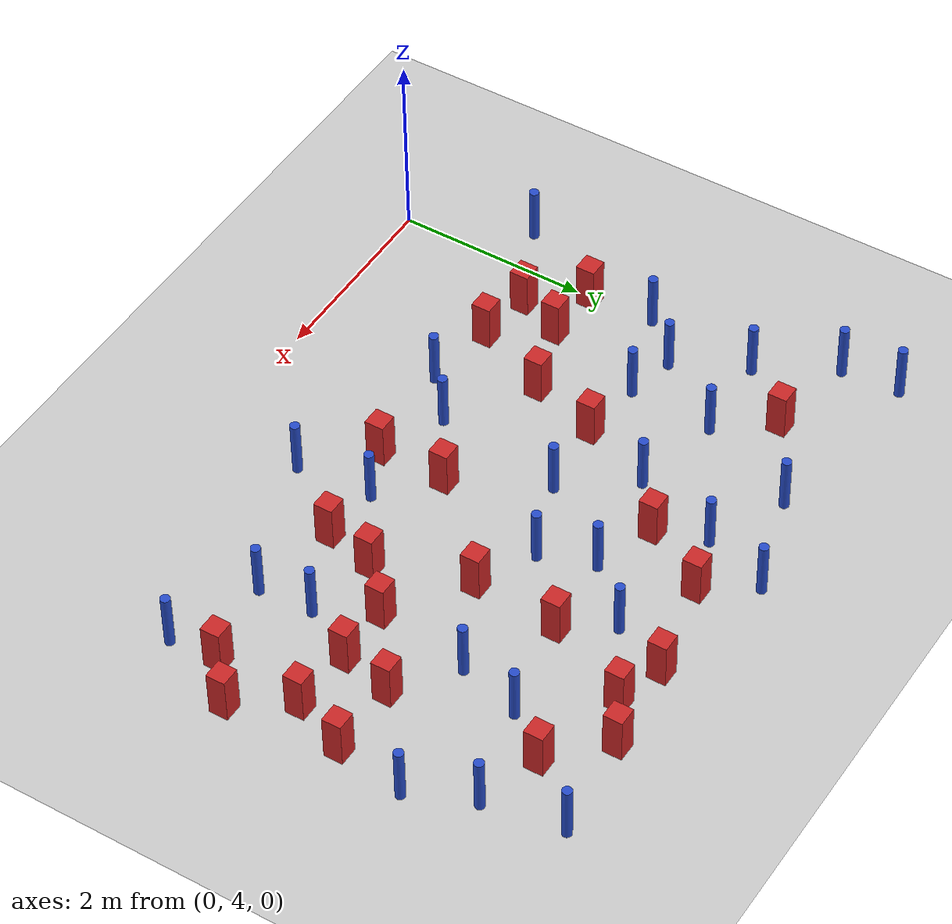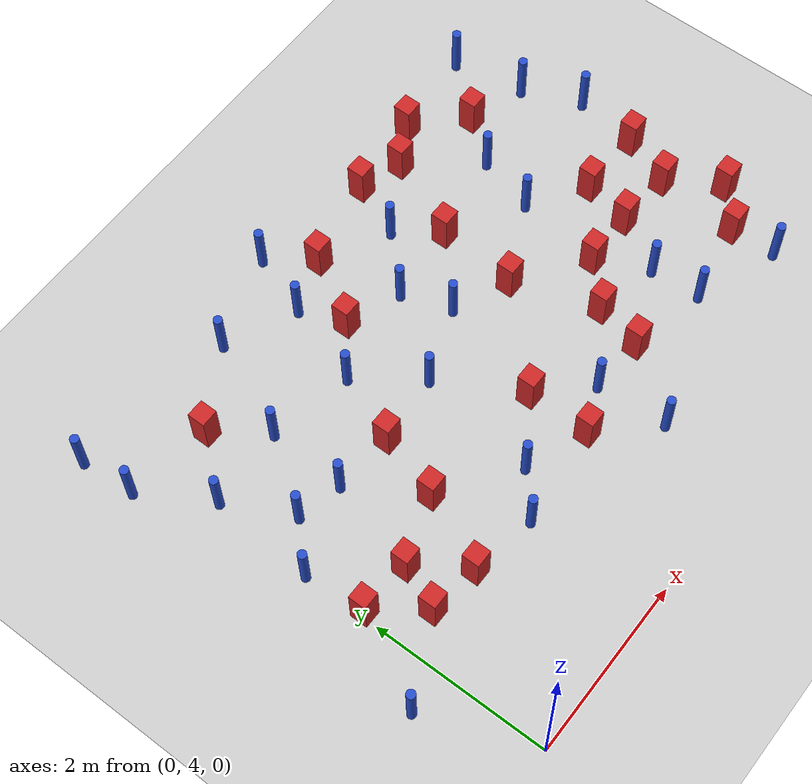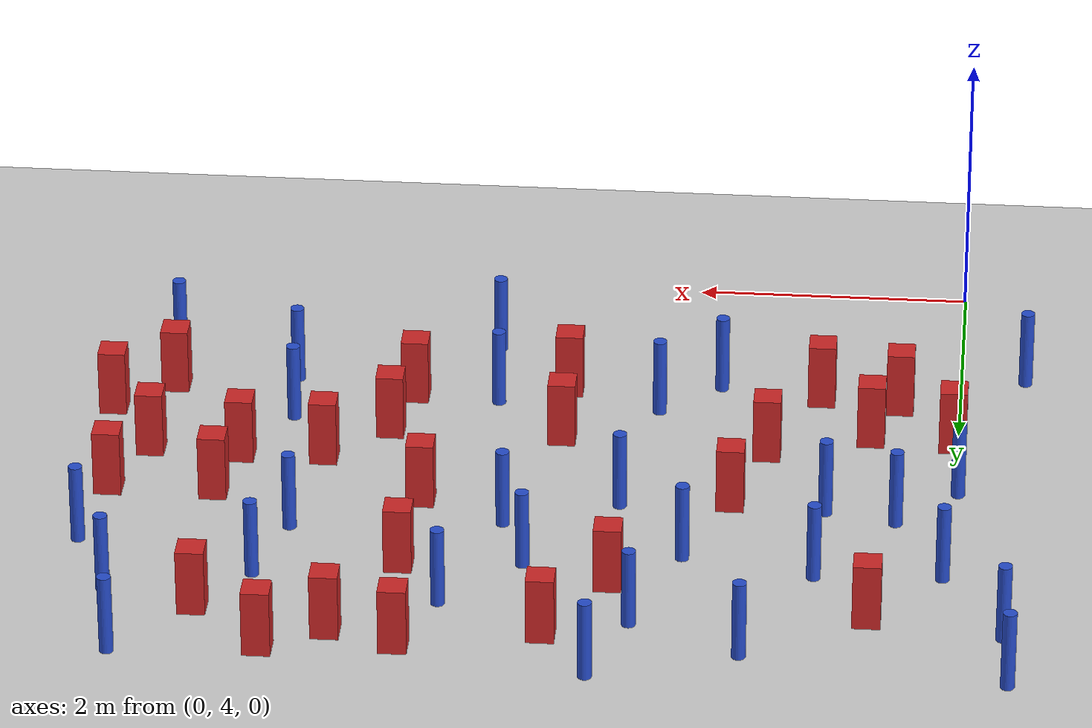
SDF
<sdf version="1.6">
 <world name="default">
  <model name="ground_plane">
   <static>1</static>
   <link name="link">
    <collision name="collision">
     <geometry><plane><normal>0 0 1</normal><size>100 100</size></plane></geometry>
     <surface><friction><ode><mu>100</mu><mu2>50</mu2></ode></friction></surface>
    </collision>
    <visual name="visual">
     <cast_shadows>0</cast_shadows>
     <geometry><plane><normal>0 0 1</normal><size>100 100</size></plane></geometry>
     <material>
      <ambient>1.0 1.0 1.0 1.0</ambient>
      <diffuse>0.8 0.8 0.8 1.0</diffuse>
      <specular>0.01 0.01 0.01 1.000000</specular>
     </material>
    </visual>
   </link>
  </model>
  <model name="square_post_obstacle4">
   <static>true</static>
   <pose>5.32736103895 7.24112209833 -6.11067671241e-07 -5.50515727128e-06 -8.79689657224e-07 2.37013304536e-05</pose>
   <link name="link">
    <pose>0 0 0.25 0 -0 0</pose>
    <inertial>
     <mass>100</mass>
     <inertia>
      <ixx>0.166667</ixx>
      <ixy>0</ixy>
      <ixz>0</ixz>
      <iyy>0.166667</iyy>
      <iyz>0</iyz>
      <izz>0.166667</izz>
     </inertia>
    </inertial>
    <collision name="collision"><geometry><box><size>.2 .2 .5</size></box></geometry></collision>
    <visual name="visual">
     <geometry><box><size>.2 .2 .5</size></box></geometry>
     <material>
      <script><name>Gazebo/Red</name><uri>file://media/materials/scripts/gazebo.material</uri></script>
     </material>
    </visual>
   </link>
  </model>
  <model name="square_post_obstacle15">
   <static>true</static>
   <pose>4.7607589038 9.30322569417 -6.11067671241e-07 -5.50515727128e-06 -8.79689657224e-07 2.37013304536e-05</pose>
   <link name="link">
    <pose>0 0 0.25 0 -0 0</pose>
    <inertial>
     <mass>100</mass>
     <inertia>
      <ixx>0.166667</ixx>
      <ixy>0</ixy>
      <ixz>0</ixz>
      <iyy>0.166667</iyy>
      <iyz>0</iyz>
      <izz>0.166667</izz>
     </inertia>
    </inertial>
    <collision name="collision"><geometry><box><size>.2 .2 .5</size></box></geometry></collision>
    <visual name="visual">
     <geometry><box><size>.2 .2 .5</size></box></geometry>
     <material>
      <script><name>Gazebo/Red</name><uri>file://media/materials/scripts/gazebo.material</uri></script>
     </material>
    </visual>
   </link>
  </model>
  <model name="pole_obstacle15">
   <static>true</static>
   <pose>2.2225770881 8.78452757937 -9.4761961606e-06 5.49618799729e-07 2.36310414e-07 -1.55090534824e-07</pose>
   <link name="link">
    <pose>0 0 0.3 0 -0 0</pose>
    <inertial>
     <mass>1</mass>
     <inertia><ixx>0.145833</ixx><ixy>0</ixy><ixz>0</ixz><iyy>0.145833</iyy><iyz>0</iyz><izz>0.125</izz></inertia>
    </inertial>
    <collision name="collision">
     <geometry><cylinder><radius>0.05</radius><length>.6</length></cylinder></geometry>
    </collision>
    <visual name="visual">
     <geometry><cylinder><radius>0.05</radius><length>.6</length></cylinder></geometry>
     <material>
      <script><name>Gazebo/Blue</name><uri>file://media/materials/scripts/gazebo.material</uri></script>
     </material>
    </visual>
   </link>
  </model>
  <model name="pole_obstacle16">
   <static>true</static>
   <pose>1.43384088985 9.14142297972 -9.47619616065e-06 5.49618799737e-07 2.36310414046e-07 -1.55090534809e-07</pose>
   <link name="link">
    <pose>0 0 0.3 0 -0 0</pose>
    <inertial>
     <mass>1</mass>
     <inertia><ixx>0.145833</ixx><ixy>0</ixy><ixz>0</ixz><iyy>0.145833</iyy><iyz>0</iyz><izz>0.125</izz></inertia>
    </inertial>
    <collision name="collision">
     <geometry><cylinder><radius>0.05</radius><length>.6</length></cylinder></geometry>
    </collision>
    <visual name="visual">
     <geometry><cylinder><radius>0.05</radius><length>.6</length></cylinder></geometry>
     <material>
      <script><name>Gazebo/Blue</name><uri>file://media/materials/scripts/gazebo.material</uri></script>
     </material>
    </visual>
   </link>
  </model>
  <model name="pole_obstacle17">
   <static>true</static>
   <pose>3.39285992217 5.78231030894 -9.47619616065e-06 5.49618799738e-07 2.3631041406e-07 -1.55090534801e-07</pose>
   <link name="link">
    <pose>0 0 0.3 0 -0 0</pose>
    <inertial>
     <mass>1</mass>
     <inertia><ixx>0.145833</ixx><ixy>0</ixy><ixz>0</ixz><iyy>0.145833</iyy><iyz>0</iyz><izz>0.125</izz></inertia>
    </inertial>
    <collision name="collision">
     <geometry><cylinder><radius>0.05</radius><length>.6</length></cylinder></geometry>
    </collision>
    <visual name="visual">
     <geometry><cylinder><radius>0.05</radius><length>.6</length></cylinder></geometry>
     <material>
      <script><name>Gazebo/Blue</name><uri>file://media/materials/scripts/gazebo.material</uri></script>
     </material>
    </visual>
   </link>
  </model>
  <model name="pole_obstacle22">
   <static>true</static>
   <pose>-0.426677283189 9.38214437274 -9.47619616065e-06 5.49618799737e-07 2.36310414031e-07 -1.55090534818e-07</pose>
   <link name="link">
    <pose>0 0 0.3 0 -0 0</pose>
    <inertial>
     <mass>1</mass>
     <inertia><ixx>0.145833</ixx><ixy>0</ixy><ixz>0</ixz><iyy>0.145833</iyy><iyz>0</iyz><izz>0.125</izz></inertia>
    </inertial>
    <collision name="collision">
     <geometry><cylinder><radius>0.05</radius><length>.6</length></cylinder></geometry>
    </collision>
    <visual name="visual">
     <geometry><cylinder><radius>0.05</radius><length>.6</length></cylinder></geometry>
     <material>
      <script><name>Gazebo/Blue</name><uri>file://media/materials/scripts/gazebo.material</uri></script>
     </material>
    </visual>
   </link>
  </model>
  <model name="pole_obstacle27">
   <static>true</static>
   <pose>3.44863694366 4.98612584158 -9.47619616065e-06 5.49618799738e-07 2.3631041406e-07 -1.55090534801e-07</pose>
   <link name="link">
    <pose>0 0 0.3 0 -0 0</pose>
    <inertial>
     <mass>1</mass>
     <inertia><ixx>0.145833</ixx><ixy>0</ixy><ixz>0</ixz><iyy>0.145833</iyy><iyz>0</iyz><izz>0.125</izz></inertia>
    </inertial>
    <collision name="collision">
     <geometry><cylinder><radius>0.05</radius><length>.6</length></cylinder></geometry>
    </collision>
    <visual name="visual">
     <geometry><cylinder><radius>0.05</radius><length>.6</length></cylinder></geometry>
     <material>
      <script><name>Gazebo/Blue</name><uri>file://media/materials/scripts/gazebo.material</uri></script>
     </material>
    </visual>
   </link>
  </model>
  <model name="pole_obstacle29">
   <static>true</static>
   <pose>3.5739130024 8.6114936394 -9.4761961606e-06 5.49618799729e-07 2.36310414e-07 -1.55090534824e-07</pose>
   <link name="link">
    <pose>0 0 0.3 0 -0 0</pose>
    <inertial>
     <mass>1</mass>
     <inertia><ixx>0.145833</ixx><ixy>0</ixy><ixz>0</ixz><iyy>0.145833</iyy><iyz>0</iyz><izz>0.125</izz></inertia>
    </inertial>
    <collision name="collision">
     <geometry><cylinder><radius>0.05</radius><length>.6</length></cylinder></geometry>
    </collision>
    <visual name="visual">
     <geometry><cylinder><radius>0.05</radius><length>.6</length></cylinder></geometry>
     <material>
      <script><name>Gazebo/Blue</name><uri>file://media/materials/scripts/gazebo.material</uri></script>
     </material>
    </visual>
   </link>
  </model>
  <model name="pole_obstacle32">
   <static>true</static>
   <pose>1.76402868827 5.45028580286 -9.47619616065e-06 5.49618799737e-07 2.36310414061e-07 -1.550905348e-07</pose>
   <link name="link">
    <pose>0 0 0.3 0 -0 0</pose>
    <inertial>
     <mass>1</mass>
     <inertia><ixx>0.145833</ixx><ixy>0</ixy><ixz>0</ixz><iyy>0.145833</iyy><iyz>0</iyz><izz>0.125</izz></inertia>
    </inertial>
    <collision name="collision">
     <geometry><cylinder><radius>0.05</radius><length>.6</length></cylinder></geometry>
    </collision>
    <visual name="visual">
     <geometry><cylinder><radius>0.05</radius><length>.6</length></cylinder></geometry>
     <material>
      <script><name>Gazebo/Blue</name><uri>file://media/materials/scripts/gazebo.material</uri></script>
     </material>
    </visual>
   </link>
  </model>
  <model name="pole_obstacle35">
   <static>true</static>
   <pose>6.21030652787 7.955595361 -9.47619616065e-06 5.49618799737e-07 2.36310414061e-07 -1.55090534799e-07</pose>
   <link name="link">
    <pose>0 0 0.3 0 -0 0</pose>
    <inertial>
     <mass>1</mass>
     <inertia><ixx>0.145833</ixx><ixy>0</ixy><ixz>0</ixz><iyy>0.145833</iyy><iyz>0</iyz><izz>0.125</izz></inertia>
    </inertial>
    <collision name="collision">
     <geometry><cylinder><radius>0.05</radius><length>.6</length></cylinder></geometry>
    </collision>
    <visual name="visual">
     <geometry><cylinder><radius>0.05</radius><length>.6</length></cylinder></geometry>
     <material>
      <script><name>Gazebo/Blue</name><uri>file://media/materials/scripts/gazebo.material</uri></script>
     </material>
    </visual>
   </link>
  </model>
  <model name="square_post_obstacle42">
   <static>true</static>
   <pose>5.19669776445 6.70099024187 -6.11067671241e-07 -5.50515727128e-06 -8.79689657224e-07 2.37013304536e-05</pose>
   <link name="link">
    <pose>0 0 0.25 0 -0 0</pose>
    <inertial>
     <mass>100</mass>
     <inertia>
      <ixx>0.166667</ixx>
      <ixy>0</ixy>
      <ixz>0</ixz>
      <iyy>0.166667</iyy>
      <iyz>0</iyz>
      <izz>0.166667</izz>
     </inertia>
    </inertial>
    <collision name="collision"><geometry><box><size>.2 .2 .5</size></box></geometry></collision>
    <visual name="visual">
     <geometry><box><size>.2 .2 .5</size></box></geometry>
     <material>
      <script><name>Gazebo/Red</name><uri>file://media/materials/scripts/gazebo.material</uri></script>
     </material>
    </visual>
   </link>
  </model>
  <model name="square_post_obstacle46">
   <static>true</static>
   <pose>1.38300242104 6.39127882707 -6.11067671241e-07 -5.50515727128e-06 -8.79689657224e-07 2.37013304536e-05</pose>
   <link name="link">
    <pose>0 0 0.25 0 -0 0</pose>
    <inertial>
     <mass>100</mass>
     <inertia>
      <ixx>0.166667</ixx>
      <ixy>0</ixy>
      <ixz>0</ixz>
      <iyy>0.166667</iyy>
      <iyz>0</iyz>
      <izz>0.166667</izz>
     </inertia>
    </inertial>
    <collision name="collision"><geometry><box><size>.2 .2 .5</size></box></geometry></collision>
    <visual name="visual">
     <geometry><box><size>.2 .2 .5</size></box></geometry>
     <material>
      <script><name>Gazebo/Red</name><uri>file://media/materials/scripts/gazebo.material</uri></script>
     </material>
    </visual>
   </link>
  </model>
  <model name="square_post_obstacle47">
   <static>true</static>
   <pose>1.01986901683 5.57303881383 -6.11067671241e-07 -5.50515727128e-06 -8.79689657224e-07 2.37013304536e-05</pose>
   <link name="link">
    <pose>0 0 0.25 0 -0 0</pose>
    <inertial>
     <mass>100</mass>
     <inertia>
      <ixx>0.166667</ixx>
      <ixy>0</ixy>
      <ixz>0</ixz>
      <iyy>0.166667</iyy>
      <iyz>0</iyz>
      <izz>0.166667</izz>
     </inertia>
    </inertial>
    <collision name="collision"><geometry><box><size>.2 .2 .5</size></box></geometry></collision>
    <visual name="visual">
     <geometry><box><size>.2 .2 .5</size></box></geometry>
     <material>
      <script><name>Gazebo/Red</name><uri>file://media/materials/scripts/gazebo.material</uri></script>
     </material>
    </visual>
   </link>
  </model>
  <model name="pole_obstacle49">
   <static>true</static>
   <pose>4.72846058445 7.66798675378 -9.47619616065e-06 5.49618799737e-07 2.36310414037e-07 -1.55090534814e-07</pose>
   <link name="link">
    <pose>0 0 0.3 0 -0 0</pose>
    <inertial>
     <mass>1</mass>
     <inertia><ixx>0.145833</ixx><ixy>0</ixy><ixz>0</ixz><iyy>0.145833</iyy><iyz>0</iyz><izz>0.125</izz></inertia>
    </inertial>
    <collision name="collision">
     <geometry><cylinder><radius>0.05</radius><length>.6</length></cylinder></geometry>
    </collision>
    <visual name="visual">
     <geometry><cylinder><radius>0.05</radius><length>.6</length></cylinder></geometry>
     <material>
      <script><name>Gazebo/Blue</name><uri>file://media/materials/scripts/gazebo.material</uri></script>
     </material>
    </visual>
   </link>
  </model>
  <model name="pole_obstacle54">
   <static>true</static>
   <pose>-0.382062669291 8.77373267463 -9.47619616065e-06 5.49618799737e-07 2.36310414031e-07 -1.55090534818e-07</pose>
   <link name="link">
    <pose>0 0 0.3 0 -0 0</pose>
    <inertial>
     <mass>1</mass>
     <inertia><ixx>0.145833</ixx><ixy>0</ixy><ixz>0</ixz><iyy>0.145833</iyy><iyz>0</iyz><izz>0.125</izz></inertia>
    </inertial>
    <collision name="collision">
     <geometry><cylinder><radius>0.05</radius><length>.6</length></cylinder></geometry>
    </collision>
    <visual name="visual">
     <geometry><cylinder><radius>0.05</radius><length>.6</length></cylinder></geometry>
     <material>
      <script><name>Gazebo/Blue</name><uri>file://media/materials/scripts/gazebo.material</uri></script>
     </material>
    </visual>
   </link>
  </model>
  <model name="square_post_obstacle58">
   <static>true</static>
   <pose>3.82902058041 7.22815258685 -6.11067671241e-07 -5.50515727128e-06 -8.79689657224e-07 2.37013304536e-05</pose>
   <link name="link">
    <pose>0 0 0.25 0 -0 0</pose>
    <inertial>
     <mass>100</mass>
     <inertia>
      <ixx>0.166667</ixx>
      <ixy>0</ixy>
      <ixz>0</ixz>
      <iyy>0.166667</iyy>
      <iyz>0</iyz>
      <izz>0.166667</izz>
     </inertia>
    </inertial>
    <collision name="collision"><geometry><box><size>.2 .2 .5</size></box></geometry></collision>
    <visual name="visual">
     <geometry><box><size>.2 .2 .5</size></box></geometry>
     <material>
      <script><name>Gazebo/Red</name><uri>file://media/materials/scripts/gazebo.material</uri></script>
     </material>
    </visual>
   </link>
  </model>
  <model name="pole_obstacle61">
   <static>true</static>
   <pose>1.90727303436 7.87506665572 -9.47619616065e-06 5.49618799737e-07 2.36310414061e-07 -1.550905348e-07</pose>
   <link name="link">
    <pose>0 0 0.3 0 -0 0</pose>
    <inertial>
     <mass>1</mass>
     <inertia><ixx>0.145833</ixx><ixy>0</ixy><ixz>0</ixz><iyy>0.145833</iyy><iyz>0</iyz><izz>0.125</izz></inertia>
    </inertial>
    <collision name="collision">
     <geometry><cylinder><radius>0.05</radius><length>.6</length></cylinder></geometry>
    </collision>
    <visual name="visual">
     <geometry><cylinder><radius>0.05</radius><length>.6</length></cylinder></geometry>
     <material>
      <script><name>Gazebo/Blue</name><uri>file://media/materials/scripts/gazebo.material</uri></script>
     </material>
    </visual>
   </link>
  </model>
  <model name="pole_obstacle62">
   <static>true</static>
   <pose>5.83246675411 5.20793853165 -9.47619616065e-06 5.49618799737e-07 2.36310414037e-07 -1.55090534814e-07</pose>
   <link name="link">
    <pose>0 0 0.3 0 -0 0</pose>
    <inertial>
     <mass>1</mass>
     <inertia><ixx>0.145833</ixx><ixy>0</ixy><ixz>0</ixz><iyy>0.145833</iyy><iyz>0</iyz><izz>0.125</izz></inertia>
    </inertial>
    <collision name="collision">
     <geometry><cylinder><radius>0.05</radius><length>.6</length></cylinder></geometry>
    </collision>
    <visual name="visual">
     <geometry><cylinder><radius>0.05</radius><length>.6</length></cylinder></geometry>
     <material>
      <script><name>Gazebo/Blue</name><uri>file://media/materials/scripts/gazebo.material</uri></script>
     </material>
    </visual>
   </link>
  </model>
  <model name="square_post_obstacle70">
   <static>true</static>
   <pose>4.58892643633 6.68785366597 -6.11067671241e-07 -5.50515727128e-06 -8.79689657224e-07 2.37013304536e-05</pose>
   <link name="link">
    <pose>0 0 0.25 0 -0 0</pose>
    <inertial>
     <mass>100</mass>
     <inertia>
      <ixx>0.166667</ixx>
      <ixy>0</ixy>
      <ixz>0</ixz>
      <iyy>0.166667</iyy>
      <iyz>0</iyz>
      <izz>0.166667</izz>
     </inertia>
    </inertial>
    <collision name="collision"><geometry><box><size>.2 .2 .5</size></box></geometry></collision>
    <visual name="visual">
     <geometry><box><size>.2 .2 .5</size></box></geometry>
     <material>
      <script><name>Gazebo/Red</name><uri>file://media/materials/scripts/gazebo.material</uri></script>
     </material>
    </visual>
   </link>
  </model>
  <model name="square_post_obstacle76">
   <static>true</static>
   <pose>6.2106799814 6.08142731779 -6.11067671241e-07 -5.50515727128e-06 -8.79689657224e-07 2.37013304536e-05</pose>
   <link name="link">
    <pose>0 0 0.25 0 -0 0</pose>
    <inertial>
     <mass>100</mass>
     <inertia>
      <ixx>0.166667</ixx>
      <ixy>0</ixy>
      <ixz>0</ixz>
      <iyy>0.166667</iyy>
      <iyz>0</iyz>
      <izz>0.166667</izz>
     </inertia>
    </inertial>
    <collision name="collision"><geometry><box><size>.2 .2 .5</size></box></geometry></collision>
    <visual name="visual">
     <geometry><box><size>.2 .2 .5</size></box></geometry>
     <material>
      <script><name>Gazebo/Red</name><uri>file://media/materials/scripts/gazebo.material</uri></script>
     </material>
    </visual>
   </link>
  </model>
  <model name="pole_obstacle73">
   <static>true</static>
   <pose>3.21440054335 7.50738312253 -9.47619616065e-06 5.49618799738e-07 2.3631041406e-07 -1.55090534801e-07</pose>
   <link name="link">
    <pose>0 0 0.3 0 -0 0</pose>
    <inertial>
     <mass>1</mass>
     <inertia><ixx>0.145833</ixx><ixy>0</ixy><ixz>0</ixz><iyy>0.145833</iyy><iyz>0</iyz><izz>0.125</izz></inertia>
    </inertial>
    <collision name="collision">
     <geometry><cylinder><radius>0.05</radius><length>.6</length></cylinder></geometry>
    </collision>
    <visual name="visual">
     <geometry><cylinder><radius>0.05</radius><length>.6</length></cylinder></geometry>
     <material>
      <script><name>Gazebo/Blue</name><uri>file://media/materials/scripts/gazebo.material</uri></script>
     </material>
    </visual>
   </link>
  </model>
  <model name="pole_obstacle79">
   <static>true</static>
   <pose>2.20224094624 5.83136104902 -9.47619616065e-06 5.49618799738e-07 2.3631041406e-07 -1.55090534801e-07</pose>
   <link name="link">
    <pose>0 0 0.3 0 -0 0</pose>
    <inertial>
     <mass>1</mass>
     <inertia><ixx>0.145833</ixx><ixy>0</ixy><ixz>0</ixz><iyy>0.145833</iyy><iyz>0</iyz><izz>0.125</izz></inertia>
    </inertial>
    <collision name="collision">
     <geometry><cylinder><radius>0.05</radius><length>.6</length></cylinder></geometry>
    </collision>
    <visual name="visual">
     <geometry><cylinder><radius>0.05</radius><length>.6</length></cylinder></geometry>
     <material>
      <script><name>Gazebo/Blue</name><uri>file://media/materials/scripts/gazebo.material</uri></script>
     </material>
    </visual>
   </link>
  </model>
  <model name="pole_obstacle86">
   <static>true</static>
   <pose>3.02744513555 8.05535952564 -9.4761961606e-06 5.49618799729e-07 2.36310414e-07 -1.55090534824e-07</pose>
   <link name="link">
    <pose>0 0 0.3 0 -0 0</pose>
    <inertial>
     <mass>1</mass>
     <inertia><ixx>0.145833</ixx><ixy>0</ixy><ixz>0</ixz><iyy>0.145833</iyy><iyz>0</iyz><izz>0.125</izz></inertia>
    </inertial>
    <collision name="collision">
     <geometry><cylinder><radius>0.05</radius><length>.6</length></cylinder></geometry>
    </collision>
    <visual name="visual">
     <geometry><cylinder><radius>0.05</radius><length>.6</length></cylinder></geometry>
     <material>
      <script><name>Gazebo/Blue</name><uri>file://media/materials/scripts/gazebo.material</uri></script>
     </material>
    </visual>
   </link>
  </model>
  <model name="square_post_obstacle81">
   <static>true</static>
   <pose>6.09039706229 7.23215515527 -6.11067671241e-07 -5.50515727128e-06 -8.79689657224e-07 2.37013304536e-05</pose>
   <link name="link">
    <pose>0 0 0.25 0 -0 0</pose>
    <inertial>
     <mass>100</mass>
     <inertia>
      <ixx>0.166667</ixx>
      <ixy>0</ixy>
      <ixz>0</ixz>
      <iyy>0.166667</iyy>
      <iyz>0</iyz>
      <izz>0.166667</izz>
     </inertia>
    </inertial>
    <collision name="collision"><geometry><box><size>.2 .2 .5</size></box></geometry></collision>
    <visual name="visual">
     <geometry><box><size>.2 .2 .5</size></box></geometry>
     <material>
      <script><name>Gazebo/Red</name><uri>file://media/materials/scripts/gazebo.material</uri></script>
     </material>
    </visual>
   </link>
  </model>
  <model name="square_post_obstacle82">
   <static>true</static>
   <pose>5.27898832987 8.80553453406 -6.11067671241e-07 -5.50515727128e-06 -8.79689657224e-07 2.37013304536e-05</pose>
   <link name="link">
    <pose>0 0 0.25 0 -0 0</pose>
    <inertial>
     <mass>100</mass>
     <inertia>
      <ixx>0.166667</ixx>
      <ixy>0</ixy>
      <ixz>0</ixz>
      <iyy>0.166667</iyy>
      <iyz>0</iyz>
      <izz>0.166667</izz>
     </inertia>
    </inertial>
    <collision name="collision"><geometry><box><size>.2 .2 .5</size></box></geometry></collision>
    <visual name="visual">
     <geometry><box><size>.2 .2 .5</size></box></geometry>
     <material>
      <script><name>Gazebo/Red</name><uri>file://media/materials/scripts/gazebo.material</uri></script>
     </material>
    </visual>
   </link>
  </model>
  <model name="pole_obstacle95">
   <static>true</static>
   <pose>0.967016108178 8.06601525825 -9.47619616065e-06 5.49618799737e-07 2.36310414031e-07 -1.55090534817e-07</pose>
   <link name="link">
    <pose>0 0 0.3 0 -0 0</pose>
    <inertial>
     <mass>1</mass>
     <inertia><ixx>0.145833</ixx><ixy>0</ixy><ixz>0</ixz><iyy>0.145833</iyy><iyz>0</iyz><izz>0.125</izz></inertia>
    </inertial>
    <collision name="collision">
     <geometry><cylinder><radius>0.05</radius><length>.6</length></cylinder></geometry>
    </collision>
    <visual name="visual">
     <geometry><cylinder><radius>0.05</radius><length>.6</length></cylinder></geometry>
     <material>
      <script><name>Gazebo/Blue</name><uri>file://media/materials/scripts/gazebo.material</uri></script>
     </material>
    </visual>
   </link>
  </model>
  <model name="square_post_obstacle85">
   <static>true</static>
   <pose>2.40376147011 8.27660586398 -6.11067671241e-07 -5.50515727128e-06 -8.79689657224e-07 2.37013304536e-05</pose>
   <link name="link">
    <pose>0 0 0.25 0 -0 0</pose>
    <inertial>
     <mass>100</mass>
     <inertia>
      <ixx>0.166667</ixx>
      <ixy>0</ixy>
      <ixz>0</ixz>
      <iyy>0.166667</iyy>
      <iyz>0</iyz>
      <izz>0.166667</izz>
     </inertia>
    </inertial>
    <collision name="collision"><geometry><box><size>.2 .2 .5</size></box></geometry></collision>
    <visual name="visual">
     <geometry><box><size>.2 .2 .5</size></box></geometry>
     <material>
      <script><name>Gazebo/Red</name><uri>file://media/materials/scripts/gazebo.material</uri></script>
     </material>
    </visual>
   </link>
  </model>
  <model name="square_post_obstacle93">
   <static>true</static>
   <pose>2.81978322629 8.98224840613 -6.11067671241e-07 -5.50515727128e-06 -8.79689657224e-07 2.37013304536e-05</pose>
   <link name="link">
    <pose>0 0 0.25 0 -0 0</pose>
    <inertial>
     <mass>100</mass>
     <inertia>
      <ixx>0.166667</ixx>
      <ixy>0</ixy>
      <ixz>0</ixz>
      <iyy>0.166667</iyy>
      <iyz>0</iyz>
      <izz>0.166667</izz>
     </inertia>
    </inertial>
    <collision name="collision"><geometry><box><size>.2 .2 .5</size></box></geometry></collision>
    <visual name="visual">
     <geometry><box><size>.2 .2 .5</size></box></geometry>
     <material>
      <script><name>Gazebo/Red</name><uri>file://media/materials/scripts/gazebo.material</uri></script>
     </material>
    </visual>
   </link>
  </model>
  <model name="pole_obstacle107">
   <static>true</static>
   <pose>4.90860632843 5.55192390631 -9.47619616065e-06 5.49618799737e-07 2.36310414037e-07 -1.55090534814e-07</pose>
   <link name="link">
    <pose>0 0 0.3 0 -0 0</pose>
    <inertial>
     <mass>1</mass>
     <inertia><ixx>0.145833</ixx><ixy>0</ixy><ixz>0</ixz><iyy>0.145833</iyy><iyz>0</iyz><izz>0.125</izz></inertia>
    </inertial>
    <collision name="collision">
     <geometry><cylinder><radius>0.05</radius><length>.6</length></cylinder></geometry>
    </collision>
    <visual name="visual">
     <geometry><cylinder><radius>0.05</radius><length>.6</length></cylinder></geometry>
     <material>
      <script><name>Gazebo/Blue</name><uri>file://media/materials/scripts/gazebo.material</uri></script>
     </material>
    </visual>
   </link>
  </model>
  <model name="square_post_obstacle95">
   <static>true</static>
   <pose>5.79524771697 5.72441388923 -6.11067671241e-07 -5.50515727128e-06 -8.79689657224e-07 2.37013304536e-05</pose>
   <link name="link">
    <pose>0 0 0.25 0 -0 0</pose>
    <inertial>
     <mass>100</mass>
     <inertia>
      <ixx>0.166667</ixx>
      <ixy>0</ixy>
      <ixz>0</ixz>
      <iyy>0.166667</iyy>
      <iyz>0</iyz>
      <izz>0.166667</izz>
     </inertia>
    </inertial>
    <collision name="collision"><geometry><box><size>.2 .2 .5</size></box></geometry></collision>
    <visual name="visual">
     <geometry><box><size>.2 .2 .5</size></box></geometry>
     <material>
      <script><name>Gazebo/Red</name><uri>file://media/materials/scripts/gazebo.material</uri></script>
     </material>
    </visual>
   </link>
  </model>
  <model name="square_post_obstacle96">
   <static>true</static>
   <pose>0.0393287997703 6.16518813599 -6.11067671241e-07 -5.50515727128e-06 -8.79689657224e-07 2.37013304536e-05</pose>
   <link name="link">
    <pose>0 0 0.25 0 -0 0</pose>
    <inertial>
     <mass>100</mass>
     <inertia>
      <ixx>0.166667</ixx>
      <ixy>0</ixy>
      <ixz>0</ixz>
      <iyy>0.166667</iyy>
      <iyz>0</iyz>
      <izz>0.166667</izz>
     </inertia>
    </inertial>
    <collision name="collision"><geometry><box><size>.2 .2 .5</size></box></geometry></collision>
    <visual name="visual">
     <geometry><box><size>.2 .2 .5</size></box></geometry>
     <material>
      <script><name>Gazebo/Red</name><uri>file://media/materials/scripts/gazebo.material</uri></script>
     </material>
    </visual>
   </link>
  </model>
  <model name="square_post_obstacle97">
   <static>true</static>
   <pose>4.31551530957 9.052681447 -6.11067671241e-07 -5.50515727128e-06 -8.79689657224e-07 2.37013304536e-05</pose>
   <link name="link">
    <pose>0 0 0.25 0 -0 0</pose>
    <inertial>
     <mass>100</mass>
     <inertia>
      <ixx>0.166667</ixx>
      <ixy>0</ixy>
      <ixz>0</ixz>
      <iyy>0.166667</iyy>
      <iyz>0</iyz>
      <izz>0.166667</izz>
     </inertia>
    </inertial>
    <collision name="collision"><geometry><box><size>.2 .2 .5</size></box></geometry></collision>
    <visual name="visual">
     <geometry><box><size>.2 .2 .5</size></box></geometry>
     <material>
      <script><name>Gazebo/Red</name><uri>file://media/materials/scripts/gazebo.material</uri></script>
     </material>
    </visual>
   </link>
  </model>
  <model name="square_post_obstacle108">
   <static>true</static>
   <pose>2.88509561247 5.56154355274 -6.11067671241e-07 -5.50515727128e-06 -8.79689657224e-07 2.37013304536e-05</pose>
   <link name="link">
    <pose>0 0 0.25 0 -0 0</pose>
    <inertial>
     <mass>100</mass>
     <inertia>
      <ixx>0.166667</ixx>
      <ixy>0</ixy>
      <ixz>0</ixz>
      <iyy>0.166667</iyy>
      <iyz>0</iyz>
      <izz>0.166667</izz>
     </inertia>
    </inertial>
    <collision name="collision"><geometry><box><size>.2 .2 .5</size></box></geometry></collision>
    <visual name="visual">
     <geometry><box><size>.2 .2 .5</size></box></geometry>
     <material>
      <script><name>Gazebo/Red</name><uri>file://media/materials/scripts/gazebo.material</uri></script>
     </material>
    </visual>
   </link>
  </model>
  <model name="square_post_obstacle123">
   <static>true</static>
   <pose>4.1436180185 6.2699434388 -6.11067671241e-07 -5.50515727128e-06 -8.79689657224e-07 2.37013304536e-05</pose>
   <link name="link">
    <pose>0 0 0.25 0 -0 0</pose>
    <inertial>
     <mass>100</mass>
     <inertia>
      <ixx>0.166667</ixx>
      <ixy>0</ixy>
      <ixz>0</ixz>
      <iyy>0.166667</iyy>
      <iyz>0</iyz>
      <izz>0.166667</izz>
     </inertia>
    </inertial>
    <collision name="collision"><geometry><box><size>.2 .2 .5</size></box></geometry></collision>
    <visual name="visual">
     <geometry><box><size>.2 .2 .5</size></box></geometry>
     <material>
      <script><name>Gazebo/Red</name><uri>file://media/materials/scripts/gazebo.material</uri></script>
     </material>
    </visual>
   </link>
  </model>
  <model name="square_post_obstacle136">
   <static>true</static>
   <pose>1.60845840405 7.11857405684 -6.11067671241e-07 -5.50515727128e-06 -8.79689657224e-07 2.37013304536e-05</pose>
   <link name="link">
    <pose>0 0 0.25 0 -0 0</pose>
    <inertial>
     <mass>100</mass>
     <inertia>
      <ixx>0.166667</ixx>
      <ixy>0</ixy>
      <ixz>0</ixz>
      <iyy>0.166667</iyy>
      <iyz>0</iyz>
      <izz>0.166667</izz>
     </inertia>
    </inertial>
    <collision name="collision"><geometry><box><size>.2 .2 .5</size></box></geometry></collision>
    <visual name="visual">
     <geometry><box><size>.2 .2 .5</size></box></geometry>
     <material>
      <script><name>Gazebo/Red</name><uri>file://media/materials/scripts/gazebo.material</uri></script>
     </material>
    </visual>
   </link>
  </model>
  <model name="square_post_obstacle140">
   <static>true</static>
   <pose>3.89826638521 8.13456184558 -6.11067671241e-07 -5.50515727128e-06 -8.79689657224e-07 2.37013304536e-05</pose>
   <link name="link">
    <pose>0 0 0.25 0 -0 0</pose>
    <inertial>
     <mass>100</mass>
     <inertia>
      <ixx>0.166667</ixx>
      <ixy>0</ixy>
      <ixz>0</ixz>
      <iyy>0.166667</iyy>
      <iyz>0</iyz>
      <izz>0.166667</izz>
     </inertia>
    </inertial>
    <collision name="collision"><geometry><box><size>.2 .2 .5</size></box></geometry></collision>
    <visual name="visual">
     <geometry><box><size>.2 .2 .5</size></box></geometry>
     <material>
      <script><name>Gazebo/Red</name><uri>file://media/materials/scripts/gazebo.material</uri></script>
     </material>
    </visual>
   </link>
  </model>
  <model name="pole_obstacle149">
   <static>true</static>
   <pose>2.39883359494 7.19123008711 -9.47619616065e-06 5.49618799738e-07 2.3631041406e-07 -1.55090534801e-07</pose>
   <link name="link">
    <pose>0 0 0.3 0 -0 0</pose>
    <inertial>
     <mass>1</mass>
     <inertia><ixx>0.145833</ixx><ixy>0</ixy><ixz>0</ixz><iyy>0.145833</iyy><iyz>0</iyz><izz>0.125</izz></inertia>
    </inertial>
    <collision name="collision">
     <geometry><cylinder><radius>0.05</radius><length>.6</length></cylinder></geometry>
    </collision>
    <visual name="visual">
     <geometry><cylinder><radius>0.05</radius><length>.6</length></cylinder></geometry>
     <material>
      <script><name>Gazebo/Blue</name><uri>file://media/materials/scripts/gazebo.material</uri></script>
     </material>
    </visual>
   </link>
  </model>
  <model name="square_post_obstacle144">
   <static>true</static>
   <pose>0.440413990055 5.64845828268 -6.11067671241e-07 -5.50515727128e-06 -8.79689657224e-07 2.37013304536e-05</pose>
   <link name="link">
    <pose>0 0 0.25 0 -0 0</pose>
    <inertial>
     <mass>100</mass>
     <inertia>
      <ixx>0.166667</ixx>
      <ixy>0</ixy>
      <ixz>0</ixz>
      <iyy>0.166667</iyy>
      <iyz>0</iyz>
      <izz>0.166667</izz>
     </inertia>
    </inertial>
    <collision name="collision"><geometry><box><size>.2 .2 .5</size></box></geometry></collision>
    <visual name="visual">
     <geometry><box><size>.2 .2 .5</size></box></geometry>
     <material>
      <script><name>Gazebo/Red</name><uri>file://media/materials/scripts/gazebo.material</uri></script>
     </material>
    </visual>
   </link>
  </model>
  <model name="pole_obstacle162">
   <static>true</static>
   <pose>0.923223111958 7.17638122614 -9.47619616065e-06 5.49618799737e-07 2.36310414065e-07 -1.55090534796e-07</pose>
   <link name="link">
    <pose>0 0 0.3 0 -0 0</pose>
    <inertial>
     <mass>1</mass>
     <inertia><ixx>0.145833</ixx><ixy>0</ixy><ixz>0</ixz><iyy>0.145833</iyy><iyz>0</iyz><izz>0.125</izz></inertia>
    </inertial>
    <collision name="collision">
     <geometry><cylinder><radius>0.05</radius><length>.6</length></cylinder></geometry>
    </collision>
    <visual name="visual">
     <geometry><cylinder><radius>0.05</radius><length>.6</length></cylinder></geometry>
     <material>
      <script><name>Gazebo/Blue</name><uri>file://media/materials/scripts/gazebo.material</uri></script>
     </material>
    </visual>
   </link>
  </model>
  <model name="pole_obstacle177">
   <static>true</static>
   <pose>-0.473653408705 5.20111014297 -9.47619616065e-06 5.49618799737e-07 2.36310414063e-07 -1.55090534797e-07</pose>
   <link name="link">
    <pose>0 0 0.3 0 -0 0</pose>
    <inertial>
     <mass>1</mass>
     <inertia><ixx>0.145833</ixx><ixy>0</ixy><ixz>0</ixz><iyy>0.145833</iyy><iyz>0</iyz><izz>0.125</izz></inertia>
    </inertial>
    <collision name="collision">
     <geometry><cylinder><radius>0.05</radius><length>.6</length></cylinder></geometry>
    </collision>
    <visual name="visual">
     <geometry><cylinder><radius>0.05</radius><length>.6</length></cylinder></geometry>
     <material>
      <script><name>Gazebo/Blue</name><uri>file://media/materials/scripts/gazebo.material</uri></script>
     </material>
    </visual>
   </link>
  </model>
  <model name="pole_obstacle178">
   <static>true</static>
   <pose>0.416032831681 7.28843904862 -9.47619616065e-06 5.49618799737e-07 2.36310414065e-07 -1.55090534796e-07</pose>
   <link name="link">
    <pose>0 0 0.3 0 -0 0</pose>
    <inertial>
     <mass>1</mass>
     <inertia><ixx>0.145833</ixx><ixy>0</ixy><ixz>0</ixz><iyy>0.145833</iyy><iyz>0</iyz><izz>0.125</izz></inertia>
    </inertial>
    <collision name="collision">
     <geometry><cylinder><radius>0.05</radius><length>.6</length></cylinder></geometry>
    </collision>
    <visual name="visual">
     <geometry><cylinder><radius>0.05</radius><length>.6</length></cylinder></geometry>
     <material>
      <script><name>Gazebo/Blue</name><uri>file://media/materials/scripts/gazebo.material</uri></script>
     </material>
    </visual>
   </link>
  </model>
  <model name="pole_obstacle187">
   <static>true</static>
   <pose>-0.0180637774155 6.85022848193 -9.47619616065e-06 5.49618799737e-07 2.36310414065e-07 -1.55090534797e-07</pose>
   <link name="link">
    <pose>0 0 0.3 0 -0 0</pose>
    <inertial>
     <mass>1</mass>
     <inertia><ixx>0.145833</ixx><ixy>0</ixy><ixz>0</ixz><iyy>0.145833</iyy><iyz>0</iyz><izz>0.125</izz></inertia>
    </inertial>
    <collision name="collision">
     <geometry><cylinder><radius>0.05</radius><length>.6</length></cylinder></geometry>
    </collision>
    <visual name="visual">
     <geometry><cylinder><radius>0.05</radius><length>.6</length></cylinder></geometry>
     <material>
      <script><name>Gazebo/Blue</name><uri>file://media/materials/scripts/gazebo.material</uri></script>
     </material>
    </visual>
   </link>
  </model>
  <model name="square_post_obstacle187">
   <static>true</static>
   <pose>4.01250053867 5.74062530714 -6.11067671241e-07 -5.50515727128e-06 -8.79689657224e-07 2.37013304536e-05</pose>
   <link name="link">
    <pose>0 0 0.25 0 -0 0</pose>
    <inertial>
     <mass>100</mass>
     <inertia>
      <ixx>0.166667</ixx>
      <ixy>0</ixy>
      <ixz>0</ixz>
      <iyy>0.166667</iyy>
      <iyz>0</iyz>
      <izz>0.166667</izz>
     </inertia>
    </inertial>
    <collision name="collision"><geometry><box><size>.2 .2 .5</size></box></geometry></collision>
    <visual name="visual">
     <geometry><box><size>.2 .2 .5</size></box></geometry>
     <material>
      <script><name>Gazebo/Red</name><uri>file://media/materials/scripts/gazebo.material</uri></script>
     </material>
    </visual>
   </link>
  </model>
  <model name="square_post_obstacle189">
   <static>true</static>
   <pose>2.88576435574 6.27711527569 -6.11067671241e-07 -5.50515727128e-06 -8.79689657224e-07 2.37013304536e-05</pose>
   <link name="link">
    <pose>0 0 0.25 0 -0 0</pose>
    <inertial>
     <mass>100</mass>
     <inertia>
      <ixx>0.166667</ixx>
      <ixy>0</ixy>
      <ixz>0</ixz>
      <iyy>0.166667</iyy>
      <iyz>0</iyz>
      <izz>0.166667</izz>
     </inertia>
    </inertial>
    <collision name="collision"><geometry><box><size>.2 .2 .5</size></box></geometry></collision>
    <visual name="visual">
     <geometry><box><size>.2 .2 .5</size></box></geometry>
     <material>
      <script><name>Gazebo/Red</name><uri>file://media/materials/scripts/gazebo.material</uri></script>
     </material>
    </visual>
   </link>
  </model>
  <model name="square_post_obstacle192">
   <static>true</static>
   <pose>0.571405420036 8.61662009744 -6.11067671241e-07 -5.50515727128e-06 -8.79689657224e-07 2.37013304536e-05</pose>
   <link name="link">
    <pose>0 0 0.25 0 -0 0</pose>
    <inertial>
     <mass>100</mass>
     <inertia>
      <ixx>0.166667</ixx>
      <ixy>0</ixy>
      <ixz>0</ixz>
      <iyy>0.166667</iyy>
      <iyz>0</iyz>
      <izz>0.166667</izz>
     </inertia>
    </inertial>
    <collision name="collision"><geometry><box><size>.2 .2 .5</size></box></geometry></collision>
    <visual name="visual">
     <geometry><box><size>.2 .2 .5</size></box></geometry>
     <material>
      <script><name>Gazebo/Red</name><uri>file://media/materials/scripts/gazebo.material</uri></script>
     </material>
    </visual>
   </link>
  </model>
  <model name="square_post_obstacle193">
   <static>true</static>
   <pose>0.635657960726 6.12822872377 -6.11067671241e-07 -5.50515727128e-06 -8.79689657224e-07 2.37013304536e-05</pose>
   <link name="link">
    <pose>0 0 0.25 0 -0 0</pose>
    <inertial>
     <mass>100</mass>
     <inertia>
      <ixx>0.166667</ixx>
      <ixy>0</ixy>
      <ixz>0</ixz>
      <iyy>0.166667</iyy>
      <iyz>0</iyz>
      <izz>0.166667</izz>
     </inertia>
    </inertial>
    <collision name="collision"><geometry><box><size>.2 .2 .5</size></box></geometry></collision>
    <visual name="visual">
     <geometry><box><size>.2 .2 .5</size></box></geometry>
     <material>
      <script><name>Gazebo/Red</name><uri>file://media/materials/scripts/gazebo.material</uri></script>
     </material>
    </visual>
   </link>
  </model>
  <model name="square_post_obstacle194">
   <static>true</static>
   <pose>3.82462095191 9.203545234 -6.11067671241e-07 -5.50515727128e-06 -8.79689657224e-07 2.37013304536e-05</pose>
   <link name="link">
    <pose>0 0 0.25 0 -0 0</pose>
    <inertial>
     <mass>100</mass>
     <inertia>
      <ixx>0.166667</ixx>
      <ixy>0</ixy>
      <ixz>0</ixz>
      <iyy>0.166667</iyy>
      <iyz>0</iyz>
      <izz>0.166667</izz>
     </inertia>
    </inertial>
    <collision name="collision"><geometry><box><size>.2 .2 .5</size></box></geometry></collision>
    <visual name="visual">
     <geometry><box><size>.2 .2 .5</size></box></geometry>
     <material>
      <script><name>Gazebo/Red</name><uri>file://media/materials/scripts/gazebo.material</uri></script>
     </material>
    </visual>
   </link>
  </model>
  <model name="square_post_obstacle199">
   <static>true</static>
   <pose>5.85881053194 6.66109728801 -6.11067671241e-07 -5.50515727128e-06 -8.79689657224e-07 2.37013304536e-05</pose>
   <link name="link">
    <pose>0 0 0.25 0 -0 0</pose>
    <inertial>
     <mass>100</mass>
     <inertia>
      <ixx>0.166667</ixx>
      <ixy>0</ixy>
      <ixz>0</ixz>
      <iyy>0.166667</iyy>
      <iyz>0</iyz>
      <izz>0.166667</izz>
     </inertia>
    </inertial>
    <collision name="collision"><geometry><box><size>.2 .2 .5</size></box></geometry></collision>
    <visual name="visual">
     <geometry><box><size>.2 .2 .5</size></box></geometry>
     <material>
      <script><name>Gazebo/Red</name><uri>file://media/materials/scripts/gazebo.material</uri></script>
     </material>
    </visual>
   </link>
  </model>
  <model name="pole_obstacle188">
   <static>true</static>
   <pose>2.47490381669 9.48178954024 -9.4761961606e-06 5.49618799729e-07 2.36310414e-07 -1.55090534824e-07</pose>
   <link name="link">
    <pose>0 0 0.3 0 -0 0</pose>
    <inertial>
     <mass>1</mass>
     <inertia><ixx>0.145833</ixx><ixy>0</ixy><ixz>0</ixz><iyy>0.145833</iyy><iyz>0</iyz><izz>0.125</izz></inertia>
    </inertial>
    <collision name="collision">
     <geometry><cylinder><radius>0.05</radius><length>.6</length></cylinder></geometry>
    </collision>
    <visual name="visual">
     <geometry><cylinder><radius>0.05</radius><length>.6</length></cylinder></geometry>
     <material>
      <script><name>Gazebo/Blue</name><uri>file://media/materials/scripts/gazebo.material</uri></script>
     </material>
    </visual>
   </link>
  </model>
  <model name="pole_obstacle203">
   <static>true</static>
   <pose>4.8734437515 6.11886895594 -9.47619616065e-06 5.49618799737e-07 2.36310414037e-07 -1.55090534814e-07</pose>
   <link name="link">
    <pose>0 0 0.3 0 -0 0</pose>
    <inertial>
     <mass>1</mass>
     <inertia><ixx>0.145833</ixx><ixy>0</ixy><ixz>0</ixz><iyy>0.145833</iyy><iyz>0</iyz><izz>0.125</izz></inertia>
    </inertial>
    <collision name="collision">
     <geometry><cylinder><radius>0.05</radius><length>.6</length></cylinder></geometry>
    </collision>
    <visual name="visual">
     <geometry><cylinder><radius>0.05</radius><length>.6</length></cylinder></geometry>
     <material>
      <script><name>Gazebo/Blue</name><uri>file://media/materials/scripts/gazebo.material</uri></script>
     </material>
    </visual>
   </link>
  </model>
  <model name="pole_obstacle204">
   <static>true</static>
   <pose>5.94017146509 8.6074602203 -9.47619616065e-06 5.49618799737e-07 2.36310414065e-07 -1.55090534796e-07</pose>
   <link name="link">
    <pose>0 0 0.3 0 -0 0</pose>
    <inertial>
     <mass>1</mass>
     <inertia><ixx>0.145833</ixx><ixy>0</ixy><ixz>0</ixz><iyy>0.145833</iyy><iyz>0</iyz><izz>0.125</izz></inertia>
    </inertial>
    <collision name="collision">
     <geometry><cylinder><radius>0.05</radius><length>.6</length></cylinder></geometry>
    </collision>
    <visual name="visual">
     <geometry><cylinder><radius>0.05</radius><length>.6</length></cylinder></geometry>
     <material>
      <script><name>Gazebo/Blue</name><uri>file://media/materials/scripts/gazebo.material</uri></script>
     </material>
    </visual>
   </link>
  </model>
  <model name="pole_obstacle209">
   <static>true</static>
   <pose>4.91935403486 8.32917902891 -9.47619616065e-06 5.49618799737e-07 2.36310414065e-07 -1.55090534796e-07</pose>
   <link name="link">
    <pose>0 0 0.3 0 -0 0</pose>
    <inertial>
     <mass>1</mass>
     <inertia><ixx>0.145833</ixx><ixy>0</ixy><ixz>0</ixz><iyy>0.145833</iyy><iyz>0</iyz><izz>0.125</izz></inertia>
    </inertial>
    <collision name="collision">
     <geometry><cylinder><radius>0.05</radius><length>.6</length></cylinder></geometry>
    </collision>
    <visual name="visual">
     <geometry><cylinder><radius>0.05</radius><length>.6</length></cylinder></geometry>
     <material>
      <script><name>Gazebo/Blue</name><uri>file://media/materials/scripts/gazebo.material</uri></script>
     </material>
    </visual>
   </link>
  </model>
  <model name="pole_obstacle214">
   <static>true</static>
   <pose>5.79951388822 9.41207793262 -9.47619616065e-06 5.49618799737e-07 2.36310414065e-07 -1.55090534796e-07</pose>
   <link name="link">
    <pose>0 0 0.3 0 -0 0</pose>
    <inertial>
     <mass>1</mass>
     <inertia><ixx>0.145833</ixx><ixy>0</ixy><ixz>0</ixz><iyy>0.145833</iyy><iyz>0</iyz><izz>0.125</izz></inertia>
    </inertial>
    <collision name="collision">
     <geometry><cylinder><radius>0.05</radius><length>.6</length></cylinder></geometry>
    </collision>
    <visual name="visual">
     <geometry><cylinder><radius>0.05</radius><length>.6</length></cylinder></geometry>
     <material>
      <script><name>Gazebo/Blue</name><uri>file://media/materials/scripts/gazebo.material</uri></script>
     </material>
    </visual>
   </link>
  </model>
  <model name="pole_obstacle220">
   <static>true</static>
   <pose>0.0594805412333 8.01612924395 -9.47619616065e-06 5.49618799737e-07 2.36310414063e-07 -1.55090534798e-07</pose>
   <link name="link">
    <pose>0 0 0.3 0 -0 0</pose>
    <inertial>
     <mass>1</mass>
     <inertia><ixx>0.145833</ixx><ixy>0</ixy><ixz>0</ixz><iyy>0.145833</iyy><iyz>0</iyz><izz>0.125</izz></inertia>
    </inertial>
    <collision name="collision">
     <geometry><cylinder><radius>0.05</radius><length>.6</length></cylinder></geometry>
    </collision>
    <visual name="visual">
     <geometry><cylinder><radius>0.05</radius><length>.6</length></cylinder></geometry>
     <material>
      <script><name>Gazebo/Blue</name><uri>file://media/materials/scripts/gazebo.material</uri></script>
     </material>
    </visual>
   </link>
  </model>
 </world>
</sdf>
